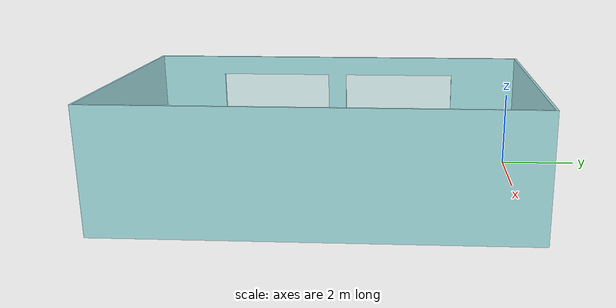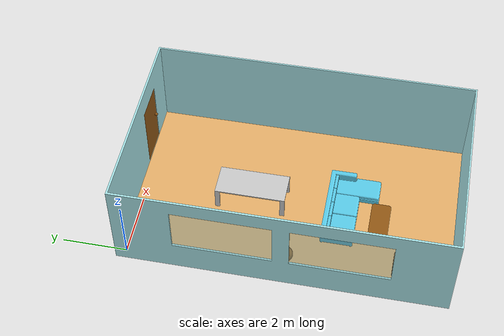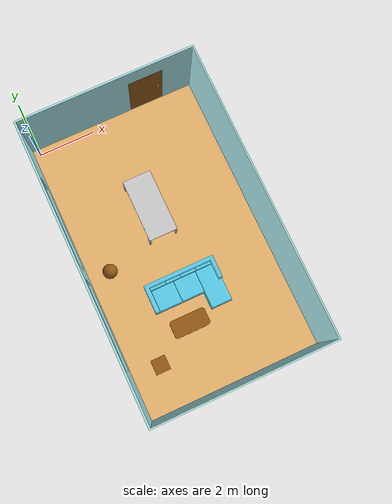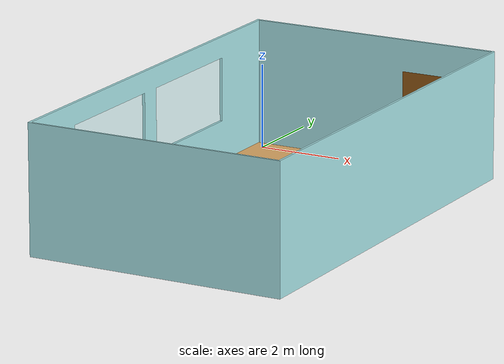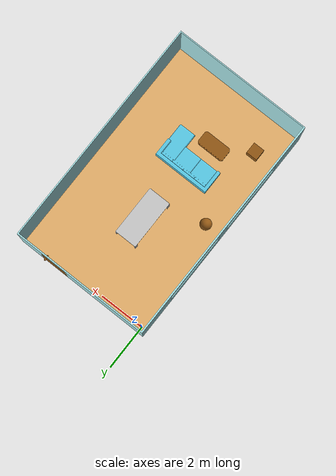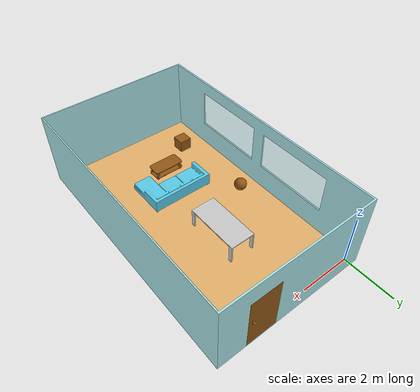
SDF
<sdf version="1.7">
 <world name="room">
  <scene><ambient>0.4 0.4 0.4 1</ambient><shadows>false</shadows></scene>
  <light type="directional" name="light_one">
   <pose>0 0 50 0 0 0</pose>
   <diffuse>0.5 0.5 0.5 1</diffuse>
   <specular>1 1 1 0</specular>
   <direction>1 0 0.5</direction>
  </light>
  <light type="directional" name="light_two">
   <pose>0 0 50 0 0 0</pose>
   <diffuse>0.5 0.5 0.5 1</diffuse>
   <specular>1 1 1 0</specular>
   <direction>1 0 -0.5</direction>
  </light>
  <model name="room">
   <static>true</static>
   <link name="floor">
    <inertial>
     <mass>2100.0</mass>
     <pose>2.8000000000000003 -4.805 0.025 0.0 0.0 0.0</pose>
     <inertia>
      <ixx>17500.437500000015</ixx>
      <iyy>6300.437499999996</iyy>
      <izz>23800.000000000015</izz>
      <ixy>0.0</ixy>
      <iyz>2.842170943040401e-14</iyz>
      <ixz>0.0</ixz>
     </inertia>
    </inertial>
    <visual name="floor_visual">
     <geometry><mesh><uri>meshes/world_floor.stl</uri><scale>0.001 0.001 0.001</scale></mesh></geometry>
     <material>
      <ambient>0.678 0.490 0.243 1</ambient>
      <diffuse>0.901 0.690 0.416 1</diffuse>
      <specular>0.2 0.2 0.2 1</specular>
      <emissive>0 0 0 1</emissive>
     </material>
    </visual>
    <collision name="floor_collision">
     <pose>0 0 0.05 0 0 0</pose>
     <geometry><plane><normal>0 0 1</normal><size>100 100</size></plane></geometry>
    </collision>
   </link>
   <link name="walls">
    <inertial>
     <mass>3117.891225</mass>
     <pose>2.836662471062473 -4.677193059850092 1.48039856890774 0.0 0.0 0.0</pose>
     <inertia>
      <ixx>50414.834671058765</ixx>
      <iyy>24072.333117455928</iyy>
      <izz>69371.22807103347</izz>
      <ixy>742.5314620847785</ixy>
      <iyz>-195.23980573716472</iyz>
      <ixz>-351.08824681010265</ixz>
     </inertia>
    </inertial>
    <visual name="walls_visual">
     <geometry><mesh><uri>meshes/world_walls.stl</uri><scale>0.001 0.001 0.001</scale></mesh></geometry>
     <material>
      <ambient>0.541 0.729 0.741 1</ambient>
      <diffuse>0.662 0.898 0.910 1</diffuse>
      <specular>0 0 0 1</specular>
      <emissive>0 0 0 1</emissive>
     </material>
    </visual>
    <collision name="walls_collision">
     <geometry><mesh><uri>meshes/world_walls.stl</uri><scale>0.001 0.001 0.001</scale></mesh></geometry>
    </collision>
   </link>
   <link name="window_two">
    <inertial>
     <mass>707.8499999999999</mass>
     <pose>-0.2325 -3.0525 1.75 0.0 0.0 0.0</pose>
     <inertia>
      <ixx>663.609375</ixx>
      <iyy>132.97109718750016</iyy>
      <izz>531.1367221874989</izz>
      <ixy>0.0</ixy>
      <iyz>4.547473508864641e-13</iyz>
      <ixz>0.0</ixz>
     </inertia>
    </inertial>
    <visual name="window_two_visual">
     <geometry><mesh><uri>meshes/world_window_two.stl</uri><scale>0.001 0.001 0.001</scale></mesh></geometry>
     <material>
      <ambient>0.541 0.729 0.741 0.4</ambient>
      <diffuse>0.662 0.898 0.910 0.4</diffuse>
      <specular>0 0 0 0.4</specular>
      <emissive>0 0 0 0.4</emissive>
     </material>
    </visual>
    <collision name="window_two_collision">
     <geometry><mesh><uri>meshes/world_window_two.stl</uri><scale>0.001 0.001 0.001</scale></mesh></geometry>
    </collision>
   </link>
   <link name="window_one">
    <inertial>
     <mass>707.8499999999999</mass>
     <pose>-0.2325 -6.5525 1.75 0.0 0.0 0.0</pose>
     <inertia>
      <ixx>663.609375</ixx>
      <iyy>132.97109718750016</iyy>
      <izz>531.1367221874971</izz>
      <ixy>0.0</ixy>
      <iyz>1.8189894035458565e-12</iyz>
      <ixz>0.0</ixz>
     </inertia>
    </inertial>
    <visual name="window_one_visual">
     <geometry><mesh><uri>meshes/world_window_one.stl</uri><scale>0.001 0.001 0.001</scale></mesh></geometry>
     <material>
      <ambient>0.541 0.729 0.741 0.4</ambient>
      <diffuse>0.662 0.898 0.910 0.4</diffuse>
      <specular>0 0 0 0.4</specular>
      <emissive>0 0 0 0.4</emissive>
     </material>
    </visual>
    <collision name="window_one_collision">
     <geometry><mesh><uri>meshes/world_window_one.stl</uri><scale>0.001 0.001 0.001</scale></mesh></geometry>
    </collision>
   </link>
   <link name="door">
    <inertial>
     <mass>80.90622930238219</mass>
     <pose>4.153415651129651 0.23000000000000004 1.1506027619640562 0.0 0.0 0.0</pose>
     <inertia>
      <ixx>32.39450110252231</ixx>
      <iyy>42.121416600180055</iyy>
      <izz>9.768176718958557</izz>
      <ixy>2.842170943040401e-14</ixy>
      <iyz>0.0</iyz>
      <ixz>-0.020559487279513178</ixz>
     </inertia>
    </inertial>
    <visual name="door_visual">
     <geometry><mesh><uri>meshes/world_door.stl</uri><scale>0.001 0.001 0.001</scale></mesh></geometry>
     <material>
      <ambient>0.400 0.239 0.051 1</ambient>
      <diffuse>0.569 0.341 0.078 1</diffuse>
      <specular>0.4 0.4 0.4 1</specular>
      <emissive>0 0 0 1</emissive>
     </material>
    </visual>
    <collision name="door_collision">
     <geometry><mesh><uri>meshes/world_door.stl</uri><scale>0.001 0.001 0.001</scale></mesh></geometry>
    </collision>
   </link>
  </model>
  <model name="dining_table">
   <link name="table">
    <pose>3.75 -4.305 0.04999999999999972 1.1102230246251563e-16 -2.7755575615628914e-17 -5.551115123125783e-17</pose>
    <inertial>
     <mass>55.80800000000011</mass>
     <pose>-1.1000000000000016 0.8999999999999962 0.6487155963302755 0.0 0.0 0.0</pose>
     <inertia>
      <ixx>31.122476467278375</ixx>
      <iyy>7.816236467278486</iyy>
      <izz>35.67189333333387</izz>
      <ixy>1.6836872379996332e-13</ixy>
      <iyz>-8.043697599095931e-14</iyz>
      <ixz>-4.250629246177317e-14</ixz>
     </inertia>
    </inertial>
    <visual name="table_visual">
     <geometry><mesh><uri>meshes/world_table.stl</uri><scale>0.001 0.001 0.001</scale></mesh></geometry>
     <material>
      <ambient>0.549 0.549 0.549 1</ambient>
      <diffuse>0.788 0.788 0.788 1</diffuse>
      <specular>0.8 0.8 0.8 1</specular>
      <emissive>0 0 0 1</emissive>
     </material>
    </visual>
    <collision name="table_collision">
     <geometry><mesh><uri>meshes/world_table.stl</uri><scale>0.001 0.001 0.001</scale></mesh></geometry>
    </collision>
   </link>
  </model>
  <model name="sphere">
   <link name="sphere">
    <inertial>
     <mass>513.7812985558306</mass>
     <pose>0.55 -4.805000000000001 0.3 0.0 0.0 0.0</pose>
     <inertia>
      <ixx>12.844532463894211</ixx>
      <iyy>12.844532463895774</iyy>
      <izz>12.844532463894211</izz>
      <ixy>-2.2737367544323206e-13</ixy>
      <iyz>0.0</iyz>
      <ixz>0.0</ixz>
     </inertia>
    </inertial>
    <visual name="sphere_visual">
     <geometry><mesh><uri>meshes/world_sphere.stl</uri><scale>0.001 0.001 0.001</scale></mesh></geometry>
     <material>
      <ambient>0.400 0.239 0.051 1</ambient>
      <diffuse>0.569 0.341 0.078 1</diffuse>
      <specular>0.4 0.4 0.4 1</specular>
      <emissive>0 0 0 1</emissive>
     </material>
    </visual>
    <collision name="sphere_collision">
     <geometry><mesh><uri>meshes/world_sphere.stl</uri><scale>0.001 0.001 0.001</scale></mesh></geometry>
    </collision>
   </link>
  </model>
  <model name="box">
   <link name="box">
    <inertial>
     <mass>981.2499999999999</mass>
     <pose>0.8 -8.305 0.3 0.0 0.0 0.0</pose>
     <inertia>
      <ixx>40.88541666670062</ixx>
      <iyy>40.885416666666515</iyy>
      <izz>40.88541666670062</izz>
      <ixy>0.0</ixy>
      <iyz>0.0</iyz>
      <ixz>-2.842170943040401e-14</ixz>
     </inertia>
    </inertial>
    <visual name="box_visual">
     <geometry><mesh><uri>meshes/world_box.stl</uri><scale>0.001 0.001 0.001</scale></mesh></geometry>
     <material>
      <ambient>0.400 0.239 0.051 1</ambient>
      <diffuse>0.569 0.341 0.078 1</diffuse>
      <specular>0.4 0.4 0.4 1</specular>
      <emissive>0 0 0 1</emissive>
     </material>
    </visual>
    <collision name="box_collision">
     <geometry><mesh><uri>meshes/world_box.stl</uri><scale>0.001 0.001 0.001</scale></mesh></geometry>
    </collision>
   </link>
  </model>
  <model name="coffee_table">
   <link name="coffee_table">
    <inertial>
     <mass>31.71953221068807</mass>
     <pose>2.239981384277429 -7.469981384277347 0.2959989866576574 0.0 0.0 0.0</pose>
     <inertia>
      <ixx>1.515551525729279</ixx>
      <iyy>5.333935636132793</iyy>
      <izz>5.801738403159561</izz>
      <ixy>4.547473508864641e-13</ixy>
      <iyz>-1.4210854715202004e-14</iyz>
      <ixz>4.902744876744691e-13</ixz>
     </inertia>
    </inertial>
    <visual name="coffee_table_visual">
     <geometry><mesh><uri>meshes/world_coffee_table.stl</uri><scale>0.001 0.001 0.001</scale></mesh></geometry>
     <material>
      <ambient>0.400 0.239 0.051 1</ambient>
      <diffuse>0.569 0.341 0.078 1</diffuse>
      <specular>0.4 0.4 0.4 1</specular>
      <emissive>0 0 0 1</emissive>
     </material>
    </visual>
    <collision name="coffee_table_col_collision">
     <geometry><mesh><uri>meshes/coffee_table_col.stl</uri><scale>0.001 0.001 0.001</scale></mesh></geometry>
    </collision>
   </link>
  </model>
  <model name="sofa">
   <link name="sofa">
    <inertial>
     <mass>145.51396319305684</mass>
     <pose>2.7020216564408686 -6.307656743478596 0.2859317610733626 0.0 0.0 0.0</pose>
     <inertia>
      <ixx>25.18212674256756</ixx>
      <iyy>86.88923793659797</iyy>
      <izz>108.05590206765464</izz>
      <ixy>11.511084303396729</ixy>
      <iyz>-1.9307371668044766</iyz>
      <ixz>0.8804010379720637</ixz>
     </inertia>
    </inertial>
    <visual name="sofa_visual">
     <geometry><mesh><uri>meshes/world_sofa.stl</uri><scale>0.001 0.001 0.001</scale></mesh></geometry>
     <material>
      <ambient>0.184 0.643 0.761 1</ambient>
      <diffuse>0.345 0.796 0.910 1</diffuse>
      <specular>0.1 0.1 0.1 1</specular>
      <emissive>0 0 0 1</emissive>
     </material>
    </visual>
    <collision name="sofa_col_collision">
     <geometry><mesh><uri>meshes/sofa_col.stl</uri><scale>0.001 0.001 0.001</scale></mesh></geometry>
    </collision>
   </link>
  </model>
 </world>
</sdf>
